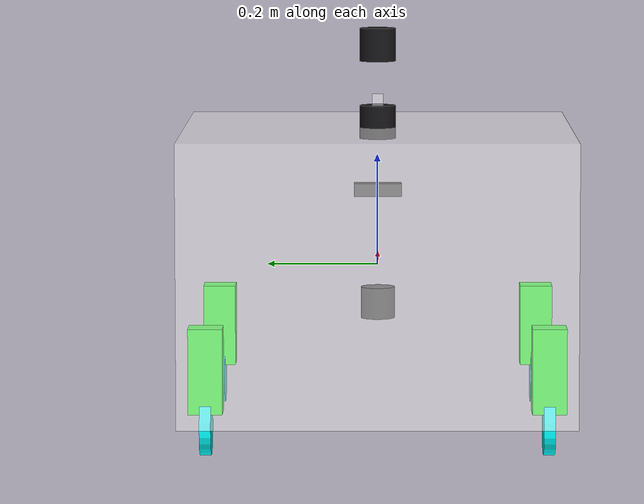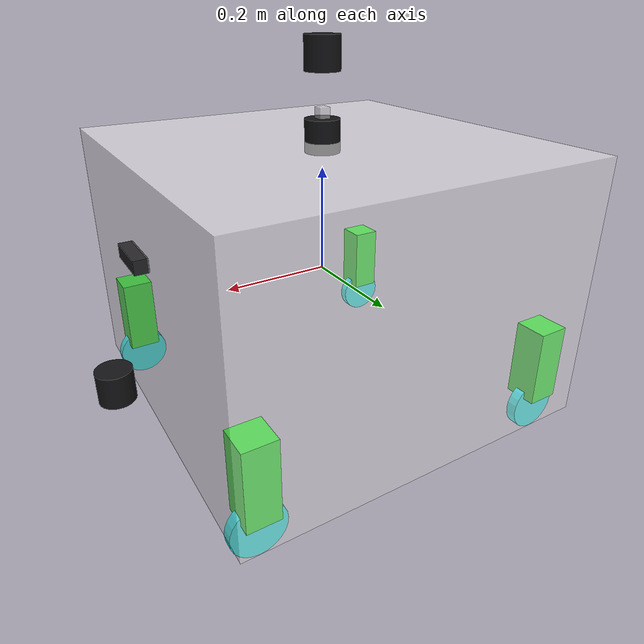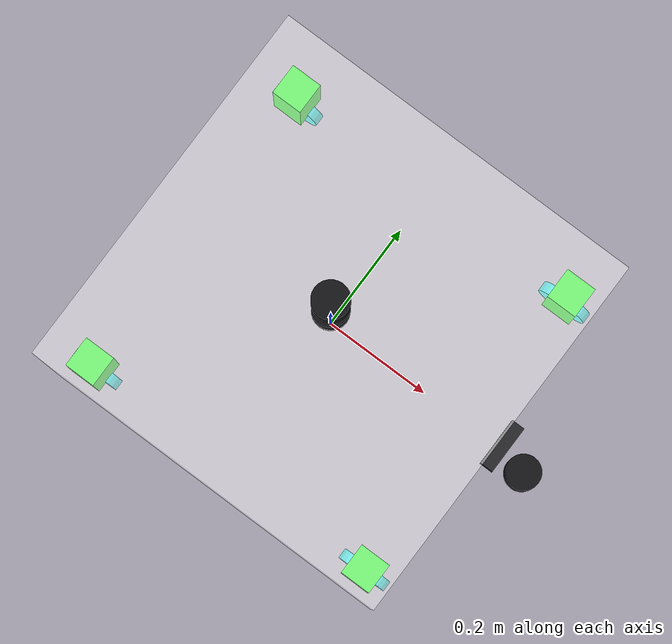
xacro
<?xml version="1.0"?>
<robot name="mini_car" xmlns:xacro="http://www.ros.org/wiki/xacro">

  <!--参数定义-->
  <xacro:property name="wheel_radius" value="0.05"/>
  <xacro:property name="wheel_width"  value="0.02"/>
  <xacro:property name="half_track"   value="0.30"/>
  <xacro:property name="hub_x" value="0.30"/>
  <xacro:property name="hub_y" value="0.30"/>
  <xacro:property name="hub_z" value="-0.25"/>
  <xacro:property name="signx" value="1"/>
  <xacro:property name="signy" value="1"/>

  <xacro:arg name="with_d455" default="false"/>

  <!-- Mid-360 实测扫描轨迹文件（空/相对路径时插件按 .so 位置查找）。
       mini_car.launch.py 会传进来一个绝对路径，整包挪目录也不用改 ✓ -->
  <xacro:arg name="mid360_pattern" default="mid360.csv"/>

  <!--可复用的块-->
  <xacro:macro name="my_corner" params="tag signx signy">
    <!--轮子转向-->
    <gazebo>
        <plugin filename="gz-sim-joint-controller-system" name="gz::sim::systems::JointController">
          <joint_name>joint_wheel_${tag}</joint_name>
          <!-- 显式话题名，和转向那边保持一致的风格 -->
          <topic>/mini_car/wheel_${tag}/cmd_vel</topic>
        </plugin>
        <!--舵机转向-->
        <plugin filename="gz-sim-joint-position-controller-system" name="gz::sim::systems::JointPositionController">
          <joint_name>joint_steer_${tag}</joint_name>
          <initial_position>0.0</initial_position>
          <topic>/mini_car/steer_${tag}/cmd_pos</topic>
        </plugin>
    </gazebo>

    <link name="wheel_${tag}">
      <visual>
        <origin xyz="0.0 0.0 0.0" rpy="1.5708 0.0 0.0"/>
        <geometry>
          <cylinder radius="${wheel_radius}" length="${wheel_width}"/>
        </geometry>
        <material name="青色">
          <color rgba="0.0 1.0 1.0 1.0"/>
        </material>
      </visual>
      <collision>
        <origin xyz="0.0 0.0 0.0" rpy="1.5708 0.0 0.0"/>
        <geometry>
          <cylinder radius="${wheel_radius}" length="${wheel_width}"/>
        </geometry>
      </collision>
      <inertial>
        <origin xyz="0.0 0.0 0.0" rpy="0.0 0.0 0.0"/>
        <mass value="0.3"/>
        <inertia ixx="0.0001975" ixy="0.0" ixz="0.0"
          iyy="0.000375" iyz="0.0" izz="0.0001975"/>
      </inertial>
    </link>
    <link name="steer_${tag}">
    <visual>
      <origin xyz="0.0 0.0 0.10" rpy="0.0 0.0 0.0"/>
      <geometry>
        <box size="0.06 0.06 0.15"/>
      </geometry>
      <material name="绿色">
        <color rgba="0.0 1.0 0.0 1.0"/>
      </material>
    </visual>
    <collision>
      <origin xyz="0.0 0.0 0.10" rpy="0.0 0.0 0.0"/>
      <geometry>
        <box size="0.06 0.06 0.15"/>
      </geometry>
    </collision>
    <inertial>
      <origin xyz="0.0 0.0 0.0" rpy="0.0 0.0 0.0"/>
      <mass value="0.4"/>
      <inertia ixx="0.0003633" ixy="0.0" ixz="0.0"
        iyy="0.0003633" iyz="0.0" izz="0.00072"/>
    </inertial>
    </link>
    <joint name="joint_wheel_${tag}" type="continuous">
      <parent link="steer_${tag}"/>
      <child link="wheel_${tag}"/>
      <origin xyz="0.0 0.0 0.0" rpy="0.0 0.0 0.0"/>
      <axis xyz="0.0 1.0 0.0"/>
    </joint>
    <joint name="joint_steer_${tag}" type="continuous">
      <parent link="base_link"/>
      <child link="steer_${tag}"/>
      <origin xyz="${signx * hub_x} ${signy * hub_y} ${hub_z}" rpy="0.0 0.0 0.0"/>
      <axis xyz="0.0 0.0 1.0"/>
    </joint>
  </xacro:macro>

  <!-- 机器人身体部分 -->
  <link name="base_link">
    <!-- 部件的外观描述 -->
    <visual>
      <!-- 沿着自己几何中心的偏移和旋转量 -->
      <origin xyz="0.0 0.0 0.0" rpy="0.0 0.0 0.0"/>
      <!-- 几何形状 -->
      <geometry>
        <box size="0.7 0.7 0.5"/>
      </geometry>
      <!-- 材质颜色 红绿蓝透明度-->
      <material name="white">
        <color rgba="1.0 1.0 1.0 0.5"/>
      </material>
    </visual>

    <!--碰撞箱-->
    <collision>
      <geometry>
        <box size="0.7 0.7 0.5"/>
      </geometry>
    </collision>

    <!--质量与惯性-->
    <inertial>
      <origin xyz="0.0 0.0 0.0" rpy="0.0 0.0 0.0"/>
      <mass value="5.0"/>
      <inertia ixx="0.308" ixy="0.0" ixz="0.0"
        iyy="0.308" iyz="0.0" izz="0.408"/>
    </inertial>
  </link>

  <link name="mid360_link">
    <visual>
      <origin xyz="0 0 0" rpy="0 0 0"/>
      <geometry>
        <cylinder radius="0.0325" length="0.060"/>
      </geometry>
      <material name="mid360_dark">
        <!-- 真机是深灰近黑。第 4 个数是【透明度】，1.0 = 不透明
             别用车体那个 "1.0 1.0 1.0 0.5"（白色半透明）→ 看不出是个传感器 ✗ -->
        <color rgba="0.08 0.08 0.09 1.0"/>
      </material>
    </visual>
  </link>

  <joint name="mid360_joint" type="fixed">
    <parent link="base_link"/>
    <child link="mid360_link"/>
    <origin xyz="0 0 0.40" rpy="0 0 0"/>
  </joint>

  <!-- 机器人的IMU部件，惯性测量 -->
  <link name="imu_link">
    <!-- 部件的外观描述 -->
    <visual>
      <!-- 沿着自己几何中心的偏移和旋转量 -->
      <origin xyz="0.0 0.0 0.0" rpy="0.0 0.0 0.0"/>
      <!-- 几何形状 -->
      <geometry>
        <box size="0.02 0.02 0.02"/>
      </geometry>
      <!-- 材质颜色 红绿蓝透明度-->
      <material name="white">
        <color rgba="1.0 1.0 1.0 0.5"/>
      </material>
    </visual>

    <inertial>
      <origin xyz="0.0 0.0 0.0" rpy="0.0 0.0 0.0"/>
      <mass value="0.02"/>
      <inertia ixx="1.3333e-06" ixy="0.0" ixz="0.0"
        iyy="1.3333e-06" iyz="0.0" izz="1.3333e-06"/>
    </inertial>

  </link>

  <!-- 机器人的关节，用于组合机器人的部件 -->
  <joint name="imu_joint" type="fixed">
    <parent link="base_link"/>
    <child link="imu_link"/>
    <origin xyz="0.0 0.0 0.3" rpy="0.0 0.0 0.0"/>
  </joint>

  <!-- ============ 关节状态发布 ============
       为什么需要它：四个角的关节是 continuous（可动关节），
       RViz 画可动关节的位置靠 /joint_states，不发布的话它不知道该把
       轮子摆在哪 → 全堆在原点 ✗

       注意【整车一份】，所以放在宏外面（和雷达同理）✓ -->
  <gazebo>
    <plugin filename="gz-sim-joint-state-publisher-system"
            name="gz::sim::systems::JointStatePublisher">
      <topic>/joint_states</topic>
      <update_rate>50</update_rate>
    </plugin>
  </gazebo>

  <gazebo>
    <plugin filename="gz-sim-odometry-publisher-system"
            name="gz::sim::systems::OdometryPublisher">
      <odom_topic>/mini_car/odom</odom_topic>
      <odom_publish_frequency>30</odom_publish_frequency>
      <!-- 这个 frame_id 只是【消息里的标签】，告诉别人"我报的位姿属于哪个坐标系"。
           插件给的是【Gazebo 世界系】的位姿（原点=场地中心），所以标签必须写
           世界系的名字，不能写 map ✗
           map 系由 odom_to_tf 节点减偏移后另行发布（见 README §8） -->
      <odom_frame>nuwa_field</odom_frame>
      <robot_base_frame>base_link</robot_base_frame>
      <dimensions>3</dimensions>
    </plugin>
  </gazebo>

  <link name="lidar_low_link">
    <visual>
      <origin xyz="0 0 0" rpy="0 0 0"/>
      <geometry><cylinder radius="0.0325" length="0.060"/></geometry>
      <material name="lidar_dark"><color rgba="0.08 0.08 0.09 1.0"/></material>
    </visual>
  </link>
  <joint name="lidar_low_joint" type="fixed">
    <parent link="base_link"/>
    <child link="lidar_low_link"/>
    <origin xyz="0.42 0.0 -0.125" rpy="0 0 0"/>
  </joint>

  <link name="lidar_high_link">
    <visual>
      <origin xyz="0 0 0" rpy="0 0 0"/>
      <geometry><cylinder radius="0.0325" length="0.060"/></geometry>
      <material name="lidar_dark"><color rgba="0.08 0.08 0.09 1.0"/></material>
    </visual>
  </link>
  <joint name="lidar_high_joint" type="fixed">
    <parent link="base_link"/>
    <child link="lidar_high_link"/>
    <origin xyz="0.0 0.0 0.26" rpy="0 0 0"/>
  </joint>

  <gazebo reference="base_link">
    <sensor name="lidar_low" type="gpu_lidar">
      <pose>0.42 0 -0.125 0 0 0</pose>
      <update_rate>10</update_rate>          <!-- C1 典型 10 Hz -->
      <lidar>
        <scan>
          <horizontal>
            <samples>500</samples>           <!-- 360° / 0.72° 角分辨率 -->
            <min_angle>-3.14159</min_angle>
            <max_angle>3.14159</max_angle>
          </horizontal>
        </scan>
        <range>
          <min>0.05</min>                    <!-- C1 盲区 5 cm -->
          <max>12.0</max>                    <!-- C1 对白墙 12 m -->
        </range>
      </lidar>
      <topic>scan_low</topic>
      <always_on>1</always_on>
      <visualize>true</visualize>
    </sensor>
  </gazebo>

  <gazebo reference="base_link">
    <sensor name="lidar_high" type="gpu_lidar">
      <pose>0 0 0.26 0 0 0</pose>
      <update_rate>10</update_rate>
      <lidar>
        <scan>
          <horizontal>
            <samples>500</samples>
            <min_angle>-3.14159</min_angle>
            <max_angle>3.14159</max_angle>
          </horizontal>
        </scan>
        <range>
          <min>0.05</min>
          <max>12.0</max>
        </range>
      </lidar>
      <topic>scan_high</topic>
      <always_on>1</always_on>
      <visualize>true</visualize>
    </sensor>
  </gazebo>

  <link name="d435_link">
    <visual>
      <origin xyz="0 0 0" rpy="0 0 0"/>
      <geometry>
        <!-- D435 外形 90×25×25 mm，长边沿车宽方向（横着装） -->
        <box size="0.025 0.090 0.025"/>
      </geometry>
      <material name="realsense_dark"><color rgba="0.15 0.15 0.16 1.0"/></material>
    </visual>
  </link>
  <joint name="d435_joint" type="fixed">
    <parent link="base_link"/>
    <child link="d435_link"/>
    <!-- 车头 +x 方向、离中心 0.36（车壳半宽 0.35，略微探出） -->
    <origin xyz="0.36 0.0 0.10" rpy="0 0 0"/>
  </joint>

  <gazebo reference="d435_link">
    <sensor name="d435" type="rgbd_camera">
      <pose>0 0 0 0 0 0</pose>
      <update_rate>30</update_rate>       <!-- 真机 pose_est 用的就是 640x480x30 -->
      <topic>d435</topic>
      <camera>
        <!-- 87° = 1.5184 rad。注意这是【深度】的 FOV；
             D435 的 RGB 其实只有 69°，但 rgbd_camera 只有一台虚拟相机，
             图像和深度共用同一个 FOV ✗ 这一处仿真做不出一致 -->
        <horizontal_fov>1.5184</horizontal_fov>
        <image>
          <width>640</width>
          <height>480</height>
          <format>R8G8B8</format>
        </image>
        <clip>
          <near>0.28</near>              <!-- D435 的最近有效距离 -->
          <far>10.0</far>
        </clip>
      </camera>
      <depth_camera>
        <!-- rgbd_camera 要求两个都写，缺一个会报 "Depth or image cameras don't exist" ✗ -->
        <clip>
          <near>0.28</near>
          <far>10.0</far>
        </clip>
      </depth_camera>
      <always_on>1</always_on>
      <visualize>false</visualize>
    </sensor>
  </gazebo>

  <xacro:if value="$(arg with_d455)">
  <link name="d455_link">
    <visual>
      <origin xyz="0 0 0" rpy="0 0 0"/>
      <geometry>
        <!-- D455 外形 124×26×36 mm（比 D435 长） -->
        <box size="0.036 0.124 0.026"/>
      </geometry>
      <material name="realsense_dark"><color rgba="0.15 0.15 0.16 1.0"/></material>
    </visual>
  </link>
  <joint name="d455_joint" type="fixed">
    <parent link="base_link"/>
    <child link="d455_link"/>
    <origin xyz="0.36 0.0 0.22" rpy="0 0 0"/>
  </joint>

  <gazebo reference="d455_link">
    <sensor name="d455" type="rgbd_camera">
      <pose>0 0 0 0 0 0</pose>
      <update_rate>30</update_rate>
      <topic>d455</topic>
      <camera>
        <horizontal_fov>1.5184</horizontal_fov>   <!-- 深度也是 87°，和 D435 一样 -->
        <image>
          <width>640</width>
          <height>480</height>
          <format>R8G8B8</format>
        </image>
        <clip>
          <near>0.52</near>              <!-- D455 的最近有效距离，比 D435 远一倍 -->
          <far>20.0</far>                <!-- D455 因为基线长，量程也更远 -->
        </clip>
      </camera>
      <depth_camera>
        <clip>
          <near>0.52</near>
          <far>20.0</far>
        </clip>
      </depth_camera>
      <always_on>1</always_on>
      <visualize>false</visualize>
    </sensor>
  </gazebo>
  </xacro:if>

  <gazebo>
    <plugin filename="libmid360_lidar_system.so" name="mid360_lidar">
      <!-- 射线挂在 base_link 上；传感器位姿在 link 系里给。
           fixed joint 的 mid360_link 会被 gazebo 合并，不能挂它 ✗ -->
      <link_name>base_link</link_name>
      <sensor_pose>0 0 0.40 0 0 0</sensor_pose>

      <!-- gz 侧话题名；mini_car.launch.py 把它桥到 ROS 同名话题 -->
      <topic>/mid360/points</topic>
      <!-- 和静态 TF base_link -> mini_car/base_link/mid360 一致 -->
      <frame_id>mini_car/base_link/mid360</frame_id>

      <!-- 由 mini_car.launch.py 传绝对路径；直接 xacro 时按 .so 相对位置找 -->
      <pattern_file>$(arg mid360_pattern)</pattern_file>

      <points_per_scan>20000</points_per_scan>
      <!-- 每 N 行发一个点，保持整帧 FOV 覆盖和真实逐点时刻：
             1 = 完整 2 万点/帧（RTF≈0.86）
             2 = 1 万点/帧  （RTF≈1.00，GLIM 反正也会降到 1 万）
             4 = 5 千点/帧  （RTF≈1.00）
           性能不够时优先改这里，不要改 points_per_scan ✗ -->
      <point_stride>1</point_stride>
      <scan_rate_hz>10.0</scan_rate_hz>
      <range_min>0.1</range_min>
      <range_max>40.0</range_max>
      <!-- 量程噪声：Mid-360 典型 ±2 cm，1 cm (1σ) 是保守值 -->
      <range_noise_stddev>0.01</range_noise_stddev>
      <!-- 实测 mid360_static_01 的有效点反射率中位数约 44~45（0~255）。
           仿真没有材质反射率模型，先发固定值；GLIM 不依赖它 ✓ -->
      <intensity>45</intensity>
      <dropout_probability>0.0</dropout_probability>
      <line_count>4</line_count>
      <seed>42</seed>
      <azimuth_cycle_offset_deg>137.507764</azimuth_cycle_offset_deg>
      <log_interval>100</log_interval>
    </plugin>
  </gazebo>

  <gazebo reference="base_link">
    <sensor name="imu" type="imu">
      <pose>0 0 0.30 0 0 0</pose>
      <update_rate>200</update_rate>
      <topic>imu</topic>
      <always_on>1</always_on>
      <imu>
        <angular_velocity>
          <x><noise type="gaussian"><mean>-0.00865</mean><stddev>0.0022</stddev></noise></x>
          <y><noise type="gaussian"><mean>0.00051</mean><stddev>0.0022</stddev></noise></y>
          <z><noise type="gaussian"><mean>-0.00463</mean><stddev>0.0022</stddev></noise></z>
        </angular_velocity>
        <linear_acceleration>
          <x><noise type="gaussian"><mean>0</mean><stddev>0.073</stddev></noise></x>
          <y><noise type="gaussian"><mean>0</mean><stddev>0.073</stddev></noise></y>
          <z><noise type="gaussian"><mean>0</mean><stddev>0.073</stddev></noise></z>
        </linear_acceleration>
      </imu>
    </sensor>
  </gazebo>

  <xacro:my_corner tag="FL" signx=" 1" signy=" 1"/>
  <xacro:my_corner tag="FR" signx=" 1" signy="-1"/>
  <xacro:my_corner tag="RL" signx="-1" signy=" 1"/>
  <xacro:my_corner tag="RR" signx="-1" signy="-1"/>
</robot>
